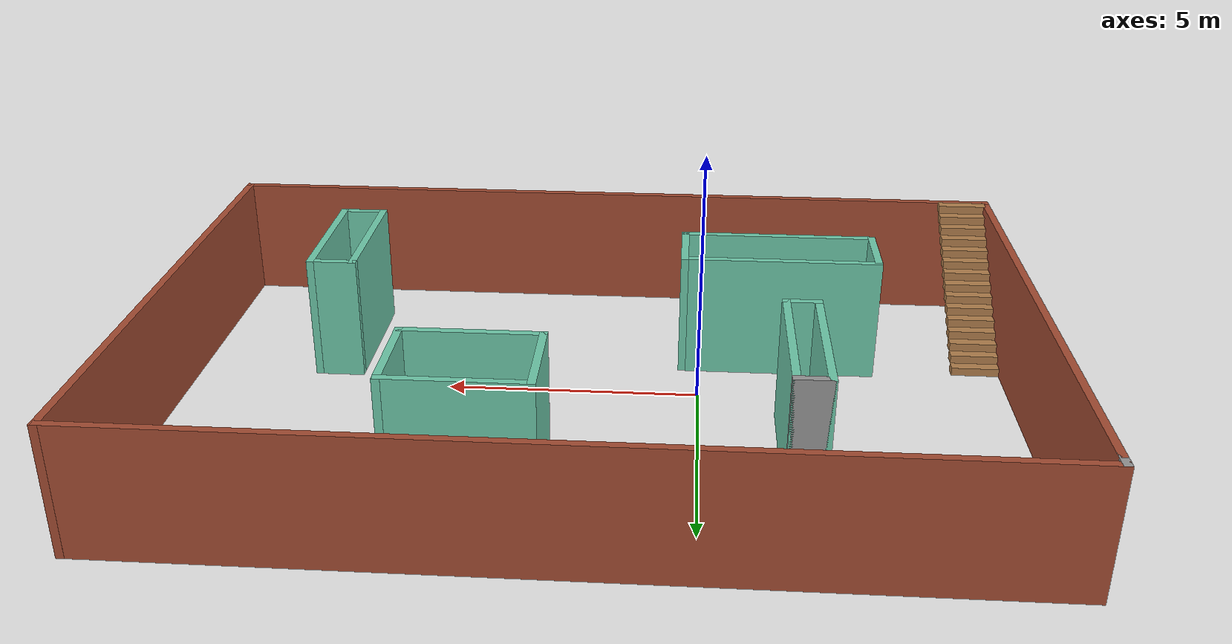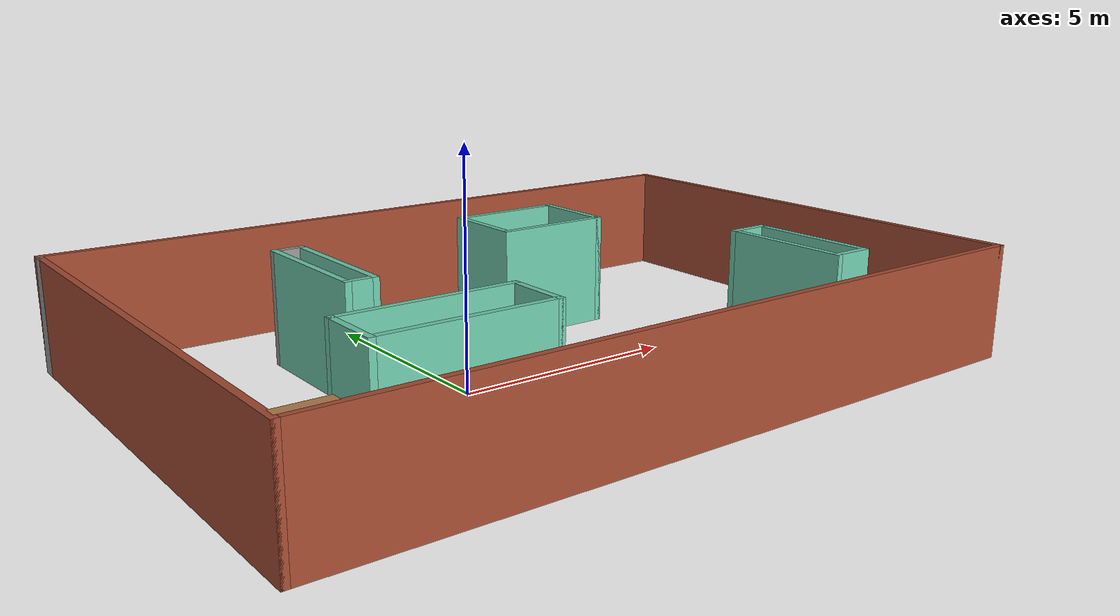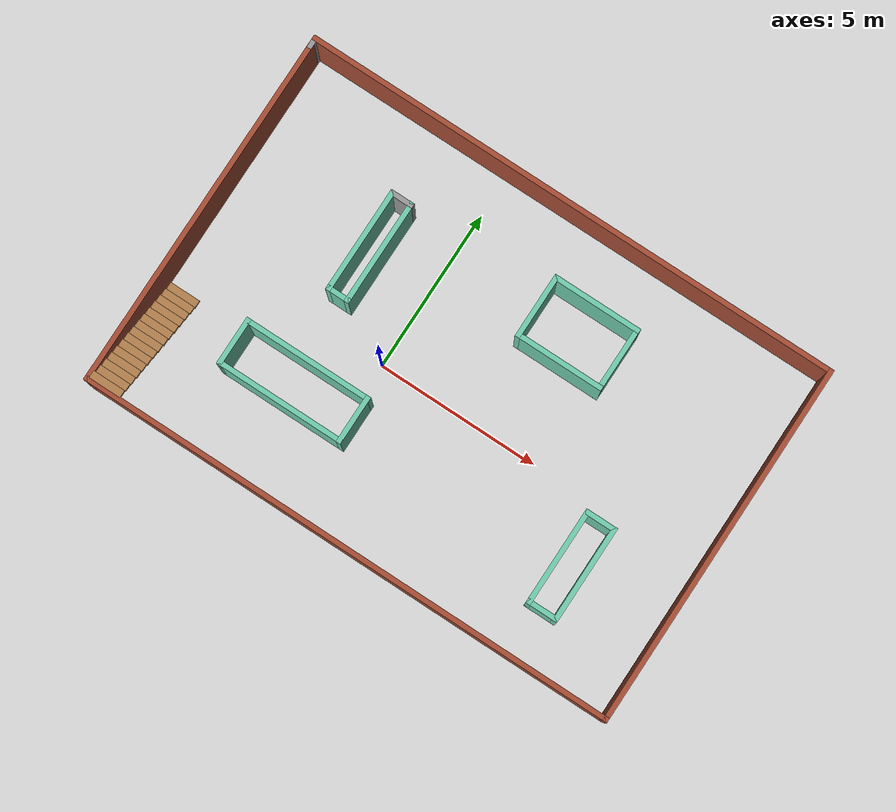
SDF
<?xml version='1.0'?>
<sdf version='1.7'>
  <model name='map1'>
    <pose>2.04502 0.73653 0 0 -0 0</pose>
    <link name='Stairs_0'>
      <visual name='Stairs_0_Visual_0'>
        <pose>-7.76709 -2.1178 0.083333 0 -0 0</pose>
        <geometry>
          <box>
            <size>1 0.233333 0.166667</size>
          </box>
        </geometry>
        <material>
          <script>
            <uri>file://media/materials/scripts/gazebo.material</uri>
            <name>Gazebo/Wood</name>
          </script>
          <ambient>1 1 1 1</ambient>
        </material>
        <meta>
          <layer>0</layer>
        </meta>
      </visual>
      <collision name='Stairs_0_Collision_0'>
        <geometry>
          <box>
            <size>1 0.233333 0.166667</size>
          </box>
        </geometry>
        <pose>-7.76709 -2.1178 0.083333 0 -0 0</pose>
      </collision>
      <visual name='Stairs_0_Visual_1'>
        <pose>-7.76709 -2.35113 0.25 0 -0 0</pose>
        <geometry>
          <box>
            <size>1 0.233333 0.166667</size>
          </box>
        </geometry>
        <material>
          <script>
            <uri>file://media/materials/scripts/gazebo.material</uri>
            <name>Gazebo/Wood</name>
          </script>
          <ambient>1 1 1 1</ambient>
        </material>
        <meta>
          <layer>0</layer>
        </meta>
      </visual>
      <collision name='Stairs_0_Collision_1'>
        <geometry>
          <box>
            <size>1 0.233333 0.166667</size>
          </box>
        </geometry>
        <pose>-7.76709 -2.35113 0.25 0 -0 0</pose>
      </collision>
      <visual name='Stairs_0_Visual_2'>
        <pose>-7.76709 -2.58446 0.416667 0 -0 0</pose>
        <geometry>
          <box>
            <size>1 0.233333 0.166667</size>
          </box>
        </geometry>
        <material>
          <script>
            <uri>file://media/materials/scripts/gazebo.material</uri>
            <name>Gazebo/Wood</name>
          </script>
          <ambient>1 1 1 1</ambient>
        </material>
        <meta>
          <layer>0</layer>
        </meta>
      </visual>
      <collision name='Stairs_0_Collision_2'>
        <geometry>
          <box>
            <size>1 0.233333 0.166667</size>
          </box>
        </geometry>
        <pose>-7.76709 -2.58446 0.416667 0 -0 0</pose>
      </collision>
      <visual name='Stairs_0_Visual_3'>
        <pose>-7.76709 -2.8178 0.583333 0 -0 0</pose>
        <geometry>
          <box>
            <size>1 0.233333 0.166667</size>
          </box>
        </geometry>
        <material>
          <script>
            <uri>file://media/materials/scripts/gazebo.material</uri>
            <name>Gazebo/Wood</name>
          </script>
          <ambient>1 1 1 1</ambient>
        </material>
        <meta>
          <layer>0</layer>
        </meta>
      </visual>
      <collision name='Stairs_0_Collision_3'>
        <geometry>
          <box>
            <size>1 0.233333 0.166667</size>
          </box>
        </geometry>
        <pose>-7.76709 -2.8178 0.583333 0 -0 0</pose>
      </collision>
      <visual name='Stairs_0_Visual_4'>
        <pose>-7.76709 -3.05113 0.75 0 -0 0</pose>
        <geometry>
          <box>
            <size>1 0.233333 0.166667</size>
          </box>
        </geometry>
        <material>
          <script>
            <uri>file://media/materials/scripts/gazebo.material</uri>
            <name>Gazebo/Wood</name>
          </script>
          <ambient>1 1 1 1</ambient>
        </material>
        <meta>
          <layer>0</layer>
        </meta>
      </visual>
      <collision name='Stairs_0_Collision_4'>
        <geometry>
          <box>
            <size>1 0.233333 0.166667</size>
          </box>
        </geometry>
        <pose>-7.76709 -3.05113 0.75 0 -0 0</pose>
      </collision>
      <visual name='Stairs_0_Visual_5'>
        <pose>-7.76709 -3.28446 0.916667 0 -0 0</pose>
        <geometry>
          <box>
            <size>1 0.233333 0.166667</size>
          </box>
        </geometry>
        <material>
          <script>
            <uri>file://media/materials/scripts/gazebo.material</uri>
            <name>Gazebo/Wood</name>
          </script>
          <ambient>1 1 1 1</ambient>
        </material>
        <meta>
          <layer>0</layer>
        </meta>
      </visual>
      <collision name='Stairs_0_Collision_5'>
        <geometry>
          <box>
            <size>1 0.233333 0.166667</size>
          </box>
        </geometry>
        <pose>-7.76709 -3.28446 0.916667 0 -0 0</pose>
      </collision>
      <visual name='Stairs_0_Visual_6'>
        <pose>-7.76709 -3.5178 1.08333 0 -0 0</pose>
        <geometry>
          <box>
            <size>1 0.233333 0.166667</size>
          </box>
        </geometry>
        <material>
          <script>
            <uri>file://media/materials/scripts/gazebo.material</uri>
            <name>Gazebo/Wood</name>
          </script>
          <ambient>1 1 1 1</ambient>
        </material>
        <meta>
          <layer>0</layer>
        </meta>
      </visual>
      <collision name='Stairs_0_Collision_6'>
        <geometry>
          <box>
            <size>1 0.233333 0.166667</size>
          </box>
        </geometry>
        <pose>-7.76709 -3.5178 1.08333 0 -0 0</pose>
      </collision>
      <visual name='Stairs_0_Visual_7'>
        <pose>-7.76709 -3.75113 1.25 0 -0 0</pose>
        <geometry>
          <box>
            <size>1 0.233333 0.166667</size>
          </box>
        </geometry>
        <material>
          <script>
            <uri>file://media/materials/scripts/gazebo.material</uri>
            <name>Gazebo/Wood</name>
          </script>
          <ambient>1 1 1 1</ambient>
        </material>
        <meta>
          <layer>0</layer>
        </meta>
      </visual>
      <collision name='Stairs_0_Collision_7'>
        <geometry>
          <box>
            <size>1 0.233333 0.166667</size>
          </box>
        </geometry>
        <pose>-7.76709 -3.75113 1.25 0 -0 0</pose>
      </collision>
      <visual name='Stairs_0_Visual_8'>
        <pose>-7.76709 -3.98447 1.41667 0 -0 0</pose>
        <geometry>
          <box>
            <size>1 0.233333 0.166667</size>
          </box>
        </geometry>
        <material>
          <script>
            <uri>file://media/materials/scripts/gazebo.material</uri>
            <name>Gazebo/Wood</name>
          </script>
          <ambient>1 1 1 1</ambient>
        </material>
        <meta>
          <layer>0</layer>
        </meta>
      </visual>
      <collision name='Stairs_0_Collision_8'>
        <geometry>
          <box>
            <size>1 0.233333 0.166667</size>
          </box>
        </geometry>
        <pose>-7.76709 -3.98447 1.41667 0 -0 0</pose>
      </collision>
      <visual name='Stairs_0_Visual_9'>
        <pose>-7.76709 -4.2178 1.58333 0 -0 0</pose>
        <geometry>
          <box>
            <size>1 0.233333 0.166667</size>
          </box>
        </geometry>
        <material>
          <script>
            <uri>file://media/materials/scripts/gazebo.material</uri>
            <name>Gazebo/Wood</name>
          </script>
          <ambient>1 1 1 1</ambient>
        </material>
        <meta>
          <layer>0</layer>
        </meta>
      </visual>
      <collision name='Stairs_0_Collision_9'>
        <geometry>
          <box>
            <size>1 0.233333 0.166667</size>
          </box>
        </geometry>
        <pose>-7.76709 -4.2178 1.58333 0 -0 0</pose>
      </collision>
      <visual name='Stairs_0_Visual_10'>
        <pose>-7.76709 -4.45113 1.75 0 -0 0</pose>
        <geometry>
          <box>
            <size>1 0.233333 0.166667</size>
          </box>
        </geometry>
        <material>
          <script>
            <uri>file://media/materials/scripts/gazebo.material</uri>
            <name>Gazebo/Wood</name>
          </script>
          <ambient>1 1 1 1</ambient>
        </material>
        <meta>
          <layer>0</layer>
        </meta>
      </visual>
      <collision name='Stairs_0_Collision_10'>
        <geometry>
          <box>
            <size>1 0.233333 0.166667</size>
          </box>
        </geometry>
        <pose>-7.76709 -4.45113 1.75 0 -0 0</pose>
      </collision>
      <visual name='Stairs_0_Visual_11'>
        <pose>-7.76709 -4.68447 1.91667 0 -0 0</pose>
        <geometry>
          <box>
            <size>1 0.233333 0.166667</size>
          </box>
        </geometry>
        <material>
          <script>
            <uri>file://media/materials/scripts/gazebo.material</uri>
            <name>Gazebo/Wood</name>
          </script>
          <ambient>1 1 1 1</ambient>
        </material>
        <meta>
          <layer>0</layer>
        </meta>
      </visual>
      <collision name='Stairs_0_Collision_11'>
        <geometry>
          <box>
            <size>1 0.233333 0.166667</size>
          </box>
        </geometry>
        <pose>-7.76709 -4.68447 1.91667 0 -0 0</pose>
      </collision>
      <visual name='Stairs_0_Visual_12'>
        <pose>-7.76709 -4.9178 2.08333 0 -0 0</pose>
        <geometry>
          <box>
            <size>1 0.233333 0.166667</size>
          </box>
        </geometry>
        <material>
          <script>
            <uri>file://media/materials/scripts/gazebo.material</uri>
            <name>Gazebo/Wood</name>
          </script>
          <ambient>1 1 1 1</ambient>
        </material>
        <meta>
          <layer>0</layer>
        </meta>
      </visual>
      <collision name='Stairs_0_Collision_12'>
        <geometry>
          <box>
            <size>1 0.233333 0.166667</size>
          </box>
        </geometry>
        <pose>-7.76709 -4.9178 2.08333 0 -0 0</pose>
      </collision>
      <visual name='Stairs_0_Visual_13'>
        <pose>-7.76709 -5.15113 2.25 0 -0 0</pose>
        <geometry>
          <box>
            <size>1 0.233333 0.166667</size>
          </box>
        </geometry>
        <material>
          <script>
            <uri>file://media/materials/scripts/gazebo.material</uri>
            <name>Gazebo/Wood</name>
          </script>
          <ambient>1 1 1 1</ambient>
        </material>
        <meta>
          <layer>0</layer>
        </meta>
      </visual>
      <collision name='Stairs_0_Collision_13'>
        <geometry>
          <box>
            <size>1 0.233333 0.166667</size>
          </box>
        </geometry>
        <pose>-7.76709 -5.15113 2.25 0 -0 0</pose>
      </collision>
      <visual name='Stairs_0_Visual_14'>
        <pose>-7.76709 -5.38446 2.41667 0 -0 0</pose>
        <geometry>
          <box>
            <size>1 0.233333 0.166667</size>
          </box>
        </geometry>
        <material>
          <script>
            <uri>file://media/materials/scripts/gazebo.material</uri>
            <name>Gazebo/Wood</name>
          </script>
          <ambient>1 1 1 1</ambient>
        </material>
        <meta>
          <layer>0</layer>
        </meta>
      </visual>
      <collision name='Stairs_0_Collision_14'>
        <geometry>
          <box>
            <size>1 0.233333 0.166667</size>
          </box>
        </geometry>
        <pose>-7.76709 -5.38446 2.41667 0 -0 0</pose>
      </collision>
    </link>
    <link name='Wall_10'>
      <collision name='Wall_10_Collision'>
        <geometry>
          <box>
            <size>4 0.15 2.5</size>
          </box>
        </geometry>
        <pose>0 0 1.25 0 -0 0</pose>
      </collision>
      <visual name='Wall_10_Visual'>
        <pose>0 0 1.25 0 -0 0</pose>
        <geometry>
          <box>
            <size>4 0.15 2.5</size>
          </box>
        </geometry>
        <material>
          <script>
            <uri>file://media/materials/scripts/gazebo.material</uri>
            <name>Gazebo/Grey</name>
          </script>
          <ambient>0.435294 0.796078 0.67451 1</ambient>
        </material>
        <meta>
          <layer>0</layer>
        </meta>
      </visual>
      <pose>-3.63305 -3.23222 0 0 -0 0</pose>
    </link>
    <link name='Wall_11'>
      <collision name='Wall_11_Collision'>
        <geometry>
          <box>
            <size>1.5 0.15 2.5</size>
          </box>
        </geometry>
        <pose>0 0 1.25 0 -0 0</pose>
      </collision>
      <visual name='Wall_11_Visual'>
        <pose>0 0 1.25 0 -0 0</pose>
        <geometry>
          <box>
            <size>1.5 0.15 2.5</size>
          </box>
        </geometry>
        <material>
          <script>
            <uri>file://media/materials/scripts/gazebo.material</uri>
            <name>Gazebo/Grey</name>
          </script>
          <ambient>0.435294 0.796078 0.67451 1</ambient>
        </material>
        <meta>
          <layer>0</layer>
        </meta>
      </visual>
      <pose>-1.70805 -2.55722 0 0 -0 1.5708</pose>
    </link>
    <link name='Wall_12'>
      <collision name='Wall_12_Collision'>
        <geometry>
          <box>
            <size>4 0.15 2.5</size>
          </box>
        </geometry>
        <pose>0 0 1.25 0 -0 0</pose>
      </collision>
      <visual name='Wall_12_Visual'>
        <pose>0 0 1.25 0 -0 0</pose>
        <geometry>
          <box>
            <size>4 0.15 2.5</size>
          </box>
        </geometry>
        <material>
          <script>
            <uri>file://media/materials/scripts/gazebo.material</uri>
            <name>Gazebo/Grey</name>
          </script>
          <ambient>0.435294 0.796078 0.67451 1</ambient>
        </material>
        <meta>
          <layer>0</layer>
        </meta>
      </visual>
      <pose>-3.63305 -1.88222 0 0 -0 3.14159</pose>
    </link>
    <link name='Wall_14'>
      <collision name='Wall_14_Collision'>
        <geometry>
          <box>
            <size>3.25 0.15 2.5</size>
          </box>
        </geometry>
        <pose>0 0 1.25 0 -0 0</pose>
      </collision>
      <visual name='Wall_14_Visual'>
        <pose>0 0 1.25 0 -0 0</pose>
        <geometry>
          <box>
            <size>3.25 0.15 2.5</size>
          </box>
        </geometry>
        <material>
          <script>
            <uri>file://media/materials/scripts/gazebo.material</uri>
            <name>Gazebo/Grey</name>
          </script>
          <ambient>0.435294 0.796078 0.67451 1</ambient>
        </material>
        <meta>
          <layer>0</layer>
        </meta>
      </visual>
      <pose>-4.21894 1.60043 0 0 -0 -1.5708</pose>
    </link>
    <link name='Wall_15'>
      <collision name='Wall_15_Collision'>
        <geometry>
          <box>
            <size>0.75 0.15 2.5</size>
          </box>
        </geometry>
        <pose>0 0 1.25 0 -0 0</pose>
      </collision>
      <visual name='Wall_15_Visual'>
        <pose>0 0 1.25 0 -0 0</pose>
        <geometry>
          <box>
            <size>0.75 0.15 2.5</size>
          </box>
        </geometry>
        <material>
          <script>
            <uri>file://media/materials/scripts/gazebo.material</uri>
            <name>Gazebo/Grey</name>
          </script>
          <ambient>0.435294 0.796078 0.67451 1</ambient>
        </material>
        <meta>
          <layer>0</layer>
        </meta>
      </visual>
      <pose>-3.91894 0.050434 0 0 -0 0</pose>
    </link>
    <link name='Wall_16'>
      <collision name='Wall_16_Collision'>
        <geometry>
          <box>
            <size>3.25 0.15 2.5</size>
          </box>
        </geometry>
        <pose>0 0 1.25 0 -0 0</pose>
      </collision>
      <visual name='Wall_16_Visual'>
        <pose>0 0 1.25 0 -0 0</pose>
        <geometry>
          <box>
            <size>3.25 0.15 2.5</size>
          </box>
        </geometry>
        <material>
          <script>
            <uri>file://media/materials/scripts/gazebo.material</uri>
            <name>Gazebo/Grey</name>
          </script>
          <ambient>0.435294 0.796078 0.67451 1</ambient>
        </material>
        <meta>
          <layer>0</layer>
        </meta>
      </visual>
      <pose>-3.61894 1.60043 0 0 -0 1.5708</pose>
    </link>
    <link name='Wall_17'>
      <collision name='Wall_17_Collision'>
        <geometry>
          <box>
            <size>0.75 0.15 2.5</size>
          </box>
        </geometry>
        <pose>0 0 1.25 0 -0 0</pose>
      </collision>
      <visual name='Wall_17_Visual'>
        <pose>0 0 1.25 0 -0 0</pose>
        <geometry>
          <box>
            <size>0.75 0.15 2.5</size>
          </box>
        </geometry>
        <material>
          <script>
            <uri>file://media/materials/scripts/gazebo.material</uri>
            <name>Gazebo/Grey</name>
          </script>
          <ambient>1 1 1 1</ambient>
        </material>
        <meta>
          <layer>0</layer>
        </meta>
      </visual>
      <pose>-3.91894 3.15043 0 0 -0 3.14159</pose>
    </link>
    <link name='Wall_19'>
      <collision name='Wall_19_Collision'>
        <geometry>
          <box>
            <size>2 0.15 2.5</size>
          </box>
        </geometry>
        <pose>0 0 1.25 0 -0 0</pose>
      </collision>
      <visual name='Wall_19_Visual'>
        <pose>0 0 1.25 0 -0 0</pose>
        <geometry>
          <box>
            <size>2 0.15 2.5</size>
          </box>
        </geometry>
        <material>
          <script>
            <uri>file://media/materials/scripts/gazebo.material</uri>
            <name>Gazebo/Grey</name>
          </script>
          <ambient>0.435294 0.796078 0.67451 1</ambient>
        </material>
        <meta>
          <layer>0</layer>
        </meta>
      </visual>
      <pose>0.744665 2.71366 0 0 -0 -1.5708</pose>
    </link>
    <link name='Wall_20'>
      <collision name='Wall_20_Collision'>
        <geometry>
          <box>
            <size>2.75 0.15 2.5</size>
          </box>
        </geometry>
        <pose>0 0 1.25 0 -0 0</pose>
      </collision>
      <visual name='Wall_20_Visual'>
        <pose>0 0 1.25 0 -0 0</pose>
        <geometry>
          <box>
            <size>2.75 0.15 2.5</size>
          </box>
        </geometry>
        <material>
          <script>
            <uri>file://media/materials/scripts/gazebo.material</uri>
            <name>Gazebo/Grey</name>
          </script>
          <ambient>0.435294 0.796078 0.67451 1</ambient>
        </material>
        <meta>
          <layer>0</layer>
        </meta>
      </visual>
      <pose>2.04467 1.78866 0 0 -0 0</pose>
    </link>
    <link name='Wall_21'>
      <collision name='Wall_21_Collision'>
        <geometry>
          <box>
            <size>2 0.15 2.5</size>
          </box>
        </geometry>
        <pose>0 0 1.25 0 -0 0</pose>
      </collision>
      <visual name='Wall_21_Visual'>
        <pose>0 0 1.25 0 -0 0</pose>
        <geometry>
          <box>
            <size>2 0.15 2.5</size>
          </box>
        </geometry>
        <material>
          <script>
            <uri>file://media/materials/scripts/gazebo.material</uri>
            <name>Gazebo/Grey</name>
          </script>
          <ambient>0.435294 0.796078 0.67451 1</ambient>
        </material>
        <meta>
          <layer>0</layer>
        </meta>
      </visual>
      <pose>3.34466 2.71366 0 0 -0 1.5708</pose>
    </link>
    <link name='Wall_22'>
      <collision name='Wall_22_Collision'>
        <geometry>
          <box>
            <size>2.75 0.15 2.5</size>
          </box>
        </geometry>
        <pose>0 0 1.25 0 -0 0</pose>
      </collision>
      <visual name='Wall_22_Visual'>
        <pose>0 0 1.25 0 -0 0</pose>
        <geometry>
          <box>
            <size>2.75 0.15 2.5</size>
          </box>
        </geometry>
        <material>
          <script>
            <uri>file://media/materials/scripts/gazebo.material</uri>
            <name>Gazebo/Grey</name>
          </script>
          <ambient>0.435294 0.796078 0.67451 1</ambient>
        </material>
        <meta>
          <layer>0</layer>
        </meta>
      </visual>
      <pose>2.04467 3.63866 0 0 -0 3.14159</pose>
    </link>
    <link name='Wall_24'>
      <collision name='Wall_24_Collision'>
        <geometry>
          <box>
            <size>3 0.15 2.5</size>
          </box>
        </geometry>
        <pose>0 0 1.25 0 -0 0</pose>
      </collision>
      <visual name='Wall_24_Visual'>
        <pose>0 0 1.25 0 -0 0</pose>
        <geometry>
          <box>
            <size>3 0.15 2.5</size>
          </box>
        </geometry>
        <material>
          <script>
            <uri>file://media/materials/scripts/gazebo.material</uri>
            <name>Gazebo/Grey</name>
          </script>
          <ambient>0.435294 0.796078 0.67451 1</ambient>
        </material>
        <meta>
          <layer>0</layer>
        </meta>
      </visual>
      <pose>4.89457 -2.62789 0 0 -0 -1.5708</pose>
    </link>
    <link name='Wall_25'>
      <collision name='Wall_25_Collision'>
        <geometry>
          <box>
            <size>1 0.15 2.5</size>
          </box>
        </geometry>
        <pose>0 0 1.25 0 -0 0</pose>
      </collision>
      <visual name='Wall_25_Visual'>
        <pose>0 0 1.25 0 -0 0</pose>
        <geometry>
          <box>
            <size>1 0.15 2.5</size>
          </box>
        </geometry>
        <material>
          <script>
            <uri>file://media/materials/scripts/gazebo.material</uri>
            <name>Gazebo/Grey</name>
          </script>
          <ambient>0.435294 0.796078 0.67451 1</ambient>
        </material>
        <meta>
          <layer>0</layer>
        </meta>
      </visual>
      <pose>5.31957 -4.05289 0 0 -0 0</pose>
    </link>
    <link name='Wall_26'>
      <collision name='Wall_26_Collision'>
        <geometry>
          <box>
            <size>3 0.15 2.5</size>
          </box>
        </geometry>
        <pose>0 0 1.25 0 -0 0</pose>
      </collision>
      <visual name='Wall_26_Visual'>
        <pose>0 0 1.25 0 -0 0</pose>
        <geometry>
          <box>
            <size>3 0.15 2.5</size>
          </box>
        </geometry>
        <material>
          <script>
            <uri>file://media/materials/scripts/gazebo.material</uri>
            <name>Gazebo/Grey</name>
          </script>
          <ambient>0.435294 0.796078 0.67451 1</ambient>
        </material>
        <meta>
          <layer>0</layer>
        </meta>
      </visual>
      <pose>5.74457 -2.62789 0 0 -0 1.5708</pose>
    </link>
    <link name='Wall_27'>
      <collision name='Wall_27_Collision'>
        <geometry>
          <box>
            <size>1 0.15 2.5</size>
          </box>
        </geometry>
        <pose>0 0 1.25 0 -0 0</pose>
      </collision>
      <visual name='Wall_27_Visual'>
        <pose>0 0 1.25 0 -0 0</pose>
        <geometry>
          <box>
            <size>1 0.15 2.5</size>
          </box>
        </geometry>
        <material>
          <script>
            <uri>file://media/materials/scripts/gazebo.material</uri>
            <name>Gazebo/Grey</name>
          </script>
          <ambient>0.435294 0.796078 0.67451 1</ambient>
        </material>
        <meta>
          <layer>0</layer>
        </meta>
      </visual>
      <pose>5.31957 -1.20289 0 0 -0 3.14159</pose>
    </link>
    <link name='Wall_3'>
      <collision name='Wall_3_Collision'>
        <geometry>
          <box>
            <size>11 0.15 2.5</size>
          </box>
        </geometry>
        <pose>0 0 1.25 0 -0 0</pose>
      </collision>
      <visual name='Wall_3_Visual'>
        <pose>0 0 1.25 0 -0 0</pose>
        <geometry>
          <box>
            <size>11 0.15 2.5</size>
          </box>
        </geometry>
        <material>
          <script>
            <uri>file://media/materials/scripts/gazebo.material</uri>
            <name>Gazebo/Bricks</name>
          </script>
          <ambient>1 1 1 1</ambient>
        </material>
        <meta>
          <layer>0</layer>
        </meta>
      </visual>
      <pose>-8.3 -0.125 0 0 -0 -1.5708</pose>
    </link>
    <link name='Wall_4'>
      <collision name='Wall_4_Collision'>
        <geometry>
          <box>
            <size>16.75 0.15 2.5</size>
          </box>
        </geometry>
        <pose>0 0 1.25 0 -0 0</pose>
      </collision>
      <visual name='Wall_4_Visual'>
        <pose>0 0 1.25 0 -0 0</pose>
        <geometry>
          <box>
            <size>16.75 0.15 2.5</size>
          </box>
        </geometry>
        <material>
          <script>
            <uri>file://media/materials/scripts/gazebo.material</uri>
            <name>Gazebo/Bricks</name>
          </script>
          <ambient>1 1 1 1</ambient>
        </material>
        <meta>
          <layer>0</layer>
        </meta>
      </visual>
      <pose>-0 -5.55 0 0 -0 0</pose>
    </link>
    <link name='Wall_5'>
      <collision name='Wall_5_Collision'>
        <geometry>
          <box>
            <size>11.25 0.15 2.5</size>
          </box>
        </geometry>
        <pose>0 0 1.25 0 -0 0</pose>
      </collision>
      <visual name='Wall_5_Visual'>
        <pose>0 0 1.25 0 -0 0</pose>
        <geometry>
          <box>
            <size>11.25 0.15 2.5</size>
          </box>
        </geometry>
        <material>
          <script>
            <uri>file://media/materials/scripts/gazebo.material</uri>
            <name>Gazebo/Bricks</name>
          </script>
          <ambient>1 1 1 1</ambient>
        </material>
        <meta>
          <layer>0</layer>
        </meta>
      </visual>
      <pose>8.3 0 0 0 -0 1.5708</pose>
    </link>
    <link name='Wall_6'>
      <collision name='Wall_6_Collision'>
        <geometry>
          <box>
            <size>16.75 0.15 2.5</size>
          </box>
        </geometry>
        <pose>0 0 1.25 0 -0 0</pose>
      </collision>
      <visual name='Wall_6_Visual'>
        <pose>0 0 1.25 0 -0 0</pose>
        <geometry>
          <box>
            <size>16.75 0.15 2.5</size>
          </box>
        </geometry>
        <material>
          <script>
            <uri>file://media/materials/scripts/gazebo.material</uri>
            <name>Gazebo/Bricks</name>
          </script>
          <ambient>1 1 1 1</ambient>
        </material>
        <meta>
          <layer>0</layer>
        </meta>
      </visual>
      <pose>-0 5.55 0 0 -0 3.14159</pose>
    </link>
    <link name='Wall_7'>
      <collision name='Wall_7_Collision'>
        <geometry>
          <box>
            <size>0.4 0.15 2.5</size>
          </box>
        </geometry>
        <pose>0 0 1.25 0 -0 0</pose>
      </collision>
      <visual name='Wall_7_Visual'>
        <pose>0 0 1.25 0 -0 0</pose>
        <geometry>
          <box>
            <size>0.4 0.15 2.5</size>
          </box>
        </geometry>
        <material>
          <script>
            <uri>file://media/materials/scripts/gazebo.material</uri>
            <name>Gazebo/Grey</name>
          </script>
          <ambient>1 1 1 1</ambient>
        </material>
        <meta>
          <layer>0</layer>
        </meta>
      </visual>
      <pose>-8.3 5.425 0 0 -0 -1.5708</pose>
    </link>
    <link name='Wall_9'>
      <collision name='Wall_9_Collision'>
        <geometry>
          <box>
            <size>1.5 0.15 2.5</size>
          </box>
        </geometry>
        <pose>0 0 1.25 0 -0 0</pose>
      </collision>
      <visual name='Wall_9_Visual'>
        <pose>0 0 1.25 0 -0 0</pose>
        <geometry>
          <box>
            <size>1.5 0.15 2.5</size>
          </box>
        </geometry>
        <material>
          <script>
            <uri>file://media/materials/scripts/gazebo.material</uri>
            <name>Gazebo/Grey</name>
          </script>
          <ambient>0.435294 0.796078 0.67451 1</ambient>
        </material>
        <meta>
          <layer>0</layer>
        </meta>
      </visual>
      <pose>-5.55805 -2.55722 0 0 -0 -1.5708</pose>
    </link>
    <static>1</static>
  </model>
</sdf>
